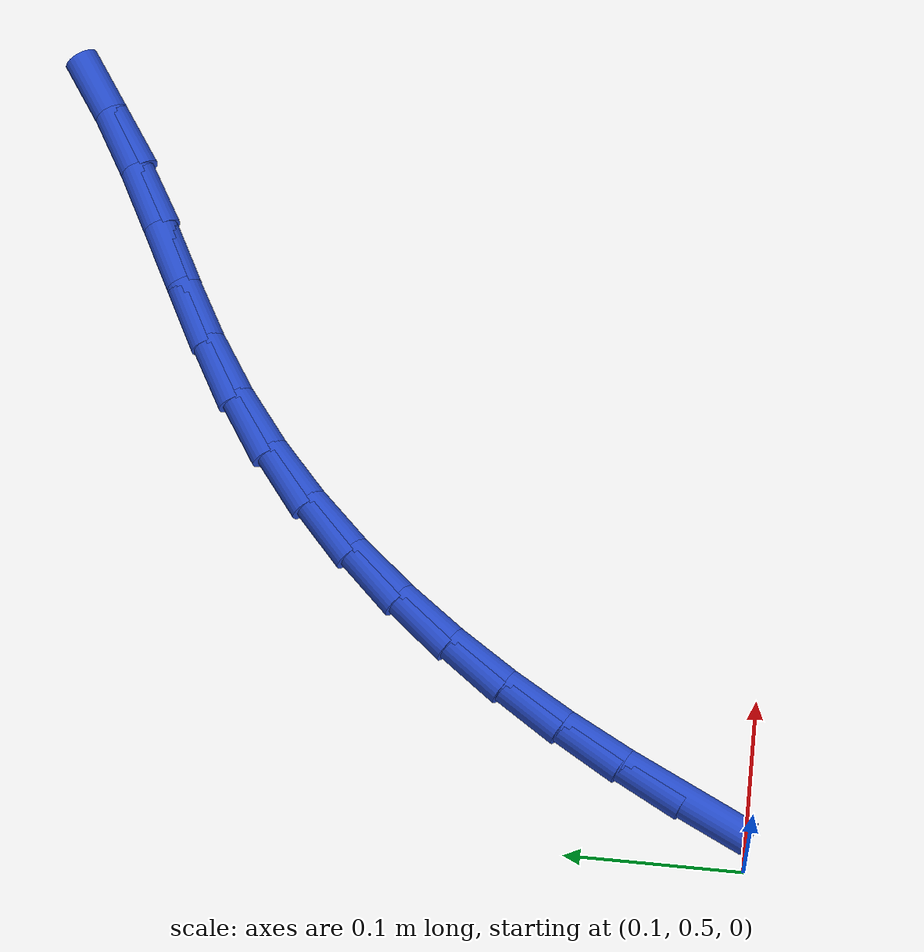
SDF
<sdf version="1.6">
 <world name="default">
  <model name="ground_plane">
   <static>1</static>
   <link name="link">
    <collision name="collision">
     <geometry><plane><normal>0 0 1</normal><size>100 100</size></plane></geometry>
     <surface><friction><ode><mu>100</mu><mu2>50</mu2></ode></friction></surface>
    </collision>
    <visual name="visual">
     <cast_shadows>0</cast_shadows>
     <geometry><plane><normal>0 0 1</normal><size>100 100</size></plane></geometry>
     <material>
      <script><uri>file://media/materials/scripts/gazebo.material</uri><name>Gazebo/WhiteGlow</name></script>
     </material>
    </visual>
   </link>
  </model>
  <model name="line">
   <link name="link_14">
    <pose>0.13411479672599777 0.5343352647541708 0.01 0 1.57 1.1079480934899388</pose>
    <collision name="collision">
     <geometry><cylinder><radius>0.01</radius><length>0.08</length></cylinder></geometry>
    </collision>
    <visual name="visual">
     <material>
      <script><name>Gazebo/Blue</name><uri>file://media/materials/scripts/gazebo.material</uri></script>
     </material>
     <geometry><cylinder><radius>0.01</radius><length>0.08</length></cylinder></geometry>
    </visual>
   </link>
   <link name="link_15">
    <pose>0.1521957984486677 0.5705696515045064 0.01 0 1.57 1.0671722059517301</pose>
    <collision name="collision">
     <geometry><cylinder><radius>0.01</radius><length>0.08</length></cylinder></geometry>
    </collision>
    <visual name="visual">
     <material>
      <script><name>Gazebo/Blue</name><uri>file://media/materials/scripts/gazebo.material</uri></script>
     </material>
     <geometry><cylinder><radius>0.01</radius><length>0.08</length></cylinder></geometry>
    </visual>
   </link>
   <link name="link_16">
    <pose>0.17159386696540813 0.6057737348000165 0.01 0 1.57 1.0218929122133151</pose>
    <collision name="collision">
     <geometry><cylinder><radius>0.01</radius><length>0.08</length></cylinder></geometry>
    </collision>
    <visual name="visual">
     <material>
      <script><name>Gazebo/Blue</name><uri>file://media/materials/scripts/gazebo.material</uri></script>
     </material>
     <geometry><cylinder><radius>0.01</radius><length>0.08</length></cylinder></geometry>
    </visual>
   </link>
   <link name="link_17">
    <pose>0.19237842529236565 0.6397577855488406 0.01 0 1.57 0.9717337445342652</pose>
    <collision name="collision">
     <geometry><cylinder><radius>0.01</radius><length>0.08</length></cylinder></geometry>
    </collision>
    <visual name="visual">
     <material>
      <script><name>Gazebo/Blue</name><uri>file://media/materials/scripts/gazebo.material</uri></script>
     </material>
     <geometry><cylinder><radius>0.01</radius><length>0.08</length></cylinder></geometry>
    </visual>
   </link>
   <link name="link_18">
    <pose>0.2146188964456869 0.6723320746591194 0.01 0 1.57 0.9163383309825583</pose>
    <collision name="collision">
     <geometry><cylinder><radius>0.01</radius><length>0.08</length></cylinder></geometry>
    </collision>
    <visual name="visual">
     <material>
      <script><name>Gazebo/Blue</name><uri>file://media/materials/scripts/gazebo.material</uri></script>
     </material>
     <geometry><cylinder><radius>0.01</radius><length>0.08</length></cylinder></geometry>
    </visual>
   </link>
   <link name="link_19">
    <pose>0.23838470344151846 0.7033068730389929 0.01 0 1.57 0.8554079036243049</pose>
    <collision name="collision">
     <geometry><cylinder><radius>0.01</radius><length>0.08</length></cylinder></geometry>
    </collision>
    <visual name="visual">
     <material>
      <script><name>Gazebo/Blue</name><uri>file://media/materials/scripts/gazebo.material</uri></script>
     </material>
     <geometry><cylinder><radius>0.01</radius><length>0.08</length></cylinder></geometry>
    </visual>
   </link>
   <link name="link_20">
    <pose>0.263745269296007 0.7324924515966011 0.01 0 1.57 0.7887519641133337</pose>
    <collision name="collision">
     <geometry><cylinder><radius>0.01</radius><length>0.08</length></cylinder></geometry>
    </collision>
    <visual name="visual">
     <material>
      <script><name>Gazebo/Blue</name><uri>file://media/materials/scripts/gazebo.material</uri></script>
     </material>
     <geometry><cylinder><radius>0.01</radius><length>0.08</length></cylinder></geometry>
    </visual>
   </link>
   <link name="link_21">
    <pose>0.29077001702529887 0.7596990812400845 0.01 0 1.57 0.7163509158405015</pose>
    <collision name="collision">
     <geometry><cylinder><radius>0.01</radius><length>0.08</length></cylinder></geometry>
    </collision>
    <visual name="visual">
     <material>
      <script><name>Gazebo/Blue</name><uri>file://media/materials/scripts/gazebo.material</uri></script>
     </material>
     <geometry><cylinder><radius>0.01</radius><length>0.08</length></cylinder></geometry>
    </visual>
   </link>
   <link name="link_22">
    <pose>0.31952836964554093 0.7847370328775829 0.01 0 1.57 0.6384247264630082</pose>
    <collision name="collision">
     <geometry><cylinder><radius>0.01</radius><length>0.08</length></cylinder></geometry>
    </collision>
    <visual name="visual">
     <material>
      <script><name>Gazebo/Blue</name><uri>file://media/materials/scripts/gazebo.material</uri></script>
     </material>
     <geometry><cylinder><radius>0.01</radius><length>0.08</length></cylinder></geometry>
    </visual>
   </link>
   <link name="link_23">
    <pose>0.3500897501728797 0.8074165774172368 0.01 0 1.57 0.5564719035018222</pose>
    <collision name="collision">
     <geometry><cylinder><radius>0.01</radius><length>0.08</length></cylinder></geometry>
    </collision>
    <visual name="visual">
     <material>
      <script><name>Gazebo/Blue</name><uri>file://media/materials/scripts/gazebo.material</uri></script>
     </material>
     <geometry><cylinder><radius>0.01</radius><length>0.08</length></cylinder></geometry>
    </visual>
   </link>
   <link name="link_24">
    <pose>0.3825052597876371 0.8275804990394438 0.01 0 1.57 0.4914078962530424</pose>
    <collision name="collision">
     <geometry><cylinder><radius>0.01</radius><length>0.08</length></cylinder></geometry>
    </collision>
    <visual name="visual">
     <material>
      <script><name>Gazebo/Blue</name><uri>file://media/materials/scripts/gazebo.material</uri></script>
     </material>
     <geometry><cylinder><radius>0.01</radius><length>0.08</length></cylinder></geometry>
    </visual>
   </link>
   <link name="link_25">
    <pose>0.4164461740224169 0.8457456068865743 0.01 0 1.57 0.46200758105183815</pose>
    <collision name="collision">
     <geometry><cylinder><radius>0.01</radius><length>0.08</length></cylinder></geometry>
    </collision>
    <visual name="visual">
     <material>
      <script><name>Gazebo/Blue</name><uri>file://media/materials/scripts/gazebo.material</uri></script>
     </material>
     <geometry><cylinder><radius>0.01</radius><length>0.08</length></cylinder></geometry>
    </visual>
   </link>
   <link name="link_26">
    <pose>0.4512256984434859 0.8630641282116305 0.01 0 1.57 0.46799715615209214</pose>
    <collision name="collision">
     <geometry><cylinder><radius>0.01</radius><length>0.08</length></cylinder></geometry>
    </collision>
    <visual name="visual">
     <material>
      <script><name>Gazebo/Blue</name><uri>file://media/materials/scripts/gazebo.material</uri></script>
     </material>
     <geometry><cylinder><radius>0.01</radius><length>0.08</length></cylinder></geometry>
    </visual>
   </link>
   <link name="link_27">
    <pose>0.4861430726636016 0.8807130737474538 0.01 0 1.57 0.5086645691222513</pose>
    <collision name="collision">
     <geometry><cylinder><radius>0.01</radius><length>0.08</length></cylinder></geometry>
    </collision>
    <visual name="visual">
     <material>
      <script><name>Gazebo/Blue</name><uri>file://media/materials/scripts/gazebo.material</uri></script>
     </material>
     <geometry><cylinder><radius>0.01</radius><length>0.08</length></cylinder></geometry>
    </visual>
   </link>
   <link name="link_28">
    <pose>0.5204975769959039 0.8998693775960086 0.01 0 1.57 0.5738189195218272</pose>
    <collision name="collision">
     <geometry><cylinder><radius>0.01</radius><length>0.08</length></cylinder></geometry>
    </collision>
    <visual name="visual">
     <material>
      <script><name>Gazebo/Blue</name><uri>file://media/materials/scripts/gazebo.material</uri></script>
     </material>
     <geometry><cylinder><radius>0.01</radius><length>0.08</length></cylinder></geometry>
    </visual>
   </link>
  </model>
 </world>
</sdf>
